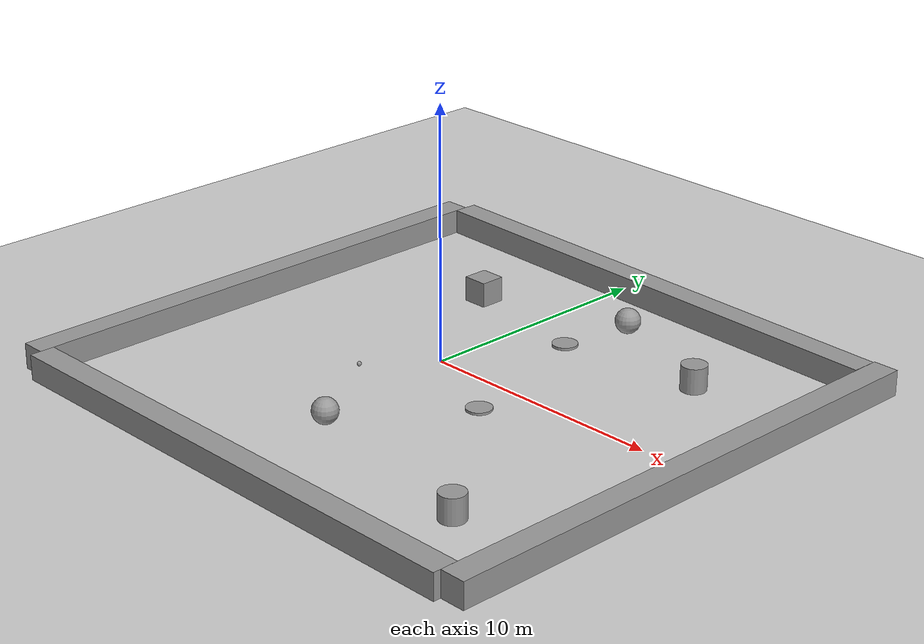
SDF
<sdf version="1.7">
 <world name="default">
  <light name="sun" type="directional">
   <pose>0 0 10 0 -0 0</pose>
   <diffuse>0.8 0.8 0.8 1</diffuse>
   <specular>0.2 0.2 0.2 1</specular>
   <attenuation>
    <range>1000</range>
    <constant>0.9</constant>
    <linear>0.01</linear>
    <quadratic>0.001</quadratic>
   </attenuation>
   <direction>-0.5 0.1 -0.9</direction>
   <spot><inner_angle>0</inner_angle><outer_angle>0</outer_angle><falloff>0</falloff></spot>
  </light>
  <model name="ground_plane">
   <static>1</static>
   <link name="link">
    <collision name="collision">
     <geometry><plane><normal>0 0 1</normal><size>100 100</size></plane></geometry>
     <surface><friction><ode><mu>100</mu><mu2>50</mu2></ode></friction></surface>
    </collision>
    <visual name="visual">
     <cast_shadows>0</cast_shadows>
     <geometry><plane><normal>0 0 1</normal><size>100 100</size></plane></geometry>
     <material>
      <script><uri>file://media/materials/scripts/gazebo.material</uri><name>Gazebo/Grey</name></script>
     </material>
    </visual>
   </link>
  </model>
  <gravity>0 0 -9.8</gravity>
  <magnetic_field>6e-06 2.3e-05 -4.2e-05</magnetic_field>
  <atmosphere type="adiabatic"/>
  <physics type="ode">
   <max_step_size>0.001</max_step_size>
   <real_time_factor>1</real_time_factor>
   <real_time_update_rate>1000</real_time_update_rate>
  </physics>
  <scene><ambient>0.4 0.4 0.4 1</ambient><background>0.7 0.7 0.7 1</background><shadows>1</shadows></scene>
  <spherical_coordinates>
   <surface_model>EARTH_WGS84</surface_model>
   <latitude_deg>0</latitude_deg>
   <longitude_deg>0</longitude_deg>
   <elevation>0</elevation>
   <heading_deg>0</heading_deg>
  </spherical_coordinates>
  <model name="Untitled">
   <link name="link_0">
    <inertial>
     <mass>320.79</mass>
     <inertia><ixx>12253.1</ixx><ixy>0</ixy><ixz>0</ixz><iyy>53.465</iyy><iyz>0</iyz><izz>12253.1</izz></inertia>
    </inertial>
    <visual name="visual">
     <geometry><box><size>1 21.386 1</size></box></geometry>
     <material>
      <lighting>1</lighting>
      <script><uri>file://media/materials/scripts/gazebo.material</uri><name>Gazebo/Grey</name></script>
      <shader type="pixel"><normal_map>__default__</normal_map></shader>
      <ambient>0.3 0.3 0.3 1</ambient>
      <diffuse>0.7 0.7 0.7 1</diffuse>
      <specular>0.01 0.01 0.01 1</specular>
      <emissive>0 0 0 1</emissive>
     </material>
    </visual>
    <collision name="collision">
     <geometry><box><size>1 21.386 1</size></box></geometry>
     <surface>
      <friction>
       <ode><mu>1</mu><mu2>1</mu2><fdir1>0 0 0</fdir1><slip1>0</slip1><slip2>0</slip2></ode>
       <torsional>
        <coefficient>1</coefficient>
        <patch_radius>0</patch_radius>
        <surface_radius>0</surface_radius>
        <use_patch_radius>1</use_patch_radius>
        <ode><slip>0</slip></ode>
       </torsional>
      </friction>
      <bounce><restitution_coefficient>0</restitution_coefficient><threshold>1e+06</threshold></bounce>
      <contact>
       <collide_without_contact>0</collide_without_contact>
       <collide_without_contact_bitmask>1</collide_without_contact_bitmask>
       <collide_bitmask>1</collide_bitmask>
       <ode>
        <soft_cfm>0</soft_cfm>
        <soft_erp>0.2</soft_erp>
        <kp>1e+13</kp>
        <kd>1</kd>
        <max_vel>0.01</max_vel>
        <min_depth>0</min_depth>
       </ode>
       <bullet>
        <split_impulse>1</split_impulse>
        <split_impulse_penetration_threshold>-0.01</split_impulse_penetration_threshold>
        <soft_cfm>0</soft_cfm>
        <soft_erp>0.2</soft_erp>
        <kp>1e+13</kp>
        <kd>1</kd>
       </bullet>
      </contact>
     </surface>
    </collision>
   </link>
   <static>0</static>
   <pose>-9.55295 -0.769559 0.5 0 -0 -0.000468</pose>
  </model>
  <model name="Untitled_clone">
   <link name="link_0">
    <inertial>
     <mass>320.79</mass>
     <inertia><ixx>12253.1</ixx><ixy>0</ixy><ixz>0</ixz><iyy>53.465</iyy><iyz>0</iyz><izz>12253.1</izz></inertia>
    </inertial>
    <visual name="visual">
     <geometry><box><size>1 21.386 1</size></box></geometry>
     <material>
      <lighting>1</lighting>
      <script><uri>file://media/materials/scripts/gazebo.material</uri><name>Gazebo/Grey</name></script>
      <shader type="pixel"><normal_map>__default__</normal_map></shader>
      <ambient>0.3 0.3 0.3 1</ambient>
      <diffuse>0.7 0.7 0.7 1</diffuse>
      <specular>0.01 0.01 0.01 1</specular>
      <emissive>0 0 0 1</emissive>
     </material>
    </visual>
    <collision name="collision">
     <geometry><box><size>1 21.386 1</size></box></geometry>
     <surface>
      <friction>
       <ode><mu>1</mu><mu2>1</mu2><fdir1>0 0 0</fdir1><slip1>0</slip1><slip2>0</slip2></ode>
       <torsional>
        <coefficient>1</coefficient>
        <patch_radius>0</patch_radius>
        <surface_radius>0</surface_radius>
        <use_patch_radius>1</use_patch_radius>
        <ode><slip>0</slip></ode>
       </torsional>
      </friction>
      <bounce><restitution_coefficient>0</restitution_coefficient><threshold>1e+06</threshold></bounce>
      <contact>
       <collide_without_contact>0</collide_without_contact>
       <collide_without_contact_bitmask>1</collide_without_contact_bitmask>
       <collide_bitmask>1</collide_bitmask>
       <ode>
        <soft_cfm>0</soft_cfm>
        <soft_erp>0.2</soft_erp>
        <kp>1e+13</kp>
        <kd>1</kd>
        <max_vel>0.01</max_vel>
        <min_depth>0</min_depth>
       </ode>
       <bullet>
        <split_impulse>1</split_impulse>
        <split_impulse_penetration_threshold>-0.01</split_impulse_penetration_threshold>
        <soft_cfm>0</soft_cfm>
        <soft_erp>0.2</soft_erp>
        <kp>1e+13</kp>
        <kd>1</kd>
       </bullet>
      </contact>
     </surface>
    </collision>
   </link>
   <static>0</static>
   <pose>1.65539 9.56207 0.5 0 -0 1.53972</pose>
  </model>
  <model name="Untitled_clone_0">
   <link name="link_0">
    <inertial>
     <mass>320.79</mass>
     <inertia><ixx>12253.1</ixx><ixy>0</ixy><ixz>0</ixz><iyy>53.465</iyy><iyz>0</iyz><izz>12253.1</izz></inertia>
    </inertial>
    <visual name="visual">
     <geometry><box><size>1 21.386 1</size></box></geometry>
     <material>
      <lighting>1</lighting>
      <script><uri>file://media/materials/scripts/gazebo.material</uri><name>Gazebo/Grey</name></script>
      <shader type="pixel"><normal_map>__default__</normal_map></shader>
      <ambient>0.3 0.3 0.3 1</ambient>
      <diffuse>0.7 0.7 0.7 1</diffuse>
      <specular>0.01 0.01 0.01 1</specular>
      <emissive>0 0 0 1</emissive>
     </material>
    </visual>
    <collision name="collision">
     <geometry><box><size>1 21.386 1</size></box></geometry>
     <surface>
      <friction>
       <ode><mu>1</mu><mu2>1</mu2><fdir1>0 0 0</fdir1><slip1>0</slip1><slip2>0</slip2></ode>
       <torsional>
        <coefficient>1</coefficient>
        <patch_radius>0</patch_radius>
        <surface_radius>0</surface_radius>
        <use_patch_radius>1</use_patch_radius>
        <ode><slip>0</slip></ode>
       </torsional>
      </friction>
      <bounce><restitution_coefficient>0</restitution_coefficient><threshold>1e+06</threshold></bounce>
      <contact>
       <collide_without_contact>0</collide_without_contact>
       <collide_without_contact_bitmask>1</collide_without_contact_bitmask>
       <collide_bitmask>1</collide_bitmask>
       <ode>
        <soft_cfm>0</soft_cfm>
        <soft_erp>0.2</soft_erp>
        <kp>1e+13</kp>
        <kd>1</kd>
        <max_vel>0.01</max_vel>
        <min_depth>0</min_depth>
       </ode>
       <bullet>
        <split_impulse>1</split_impulse>
        <split_impulse_penetration_threshold>-0.01</split_impulse_penetration_threshold>
        <soft_cfm>0</soft_cfm>
        <soft_erp>0.2</soft_erp>
        <kp>1e+13</kp>
        <kd>1</kd>
       </bullet>
      </contact>
     </surface>
    </collision>
   </link>
   <static>0</static>
   <pose>12.8442 -0.893901 0.5 0 -0 -0.001403</pose>
  </model>
  <model name="Untitled_clone_1">
   <link name="link_0">
    <inertial>
     <mass>320.79</mass>
     <inertia><ixx>12253.1</ixx><ixy>0</ixy><ixz>0</ixz><iyy>53.465</iyy><iyz>0</iyz><izz>12253.1</izz></inertia>
    </inertial>
    <visual name="visual">
     <geometry><box><size>1 21.386 1</size></box></geometry>
     <material>
      <lighting>1</lighting>
      <script><uri>file://media/materials/scripts/gazebo.material</uri><name>Gazebo/Grey</name></script>
      <shader type="pixel"><normal_map>__default__</normal_map></shader>
      <ambient>0.3 0.3 0.3 1</ambient>
      <diffuse>0.7 0.7 0.7 1</diffuse>
      <specular>0.01 0.01 0.01 1</specular>
      <emissive>0 0 0 1</emissive>
     </material>
    </visual>
    <collision name="collision">
     <geometry><box><size>1 21.386 1</size></box></geometry>
     <surface>
      <friction>
       <ode><mu>1</mu><mu2>1</mu2><fdir1>0 0 0</fdir1><slip1>0</slip1><slip2>0</slip2></ode>
       <torsional>
        <coefficient>1</coefficient>
        <patch_radius>0</patch_radius>
        <surface_radius>0</surface_radius>
        <use_patch_radius>1</use_patch_radius>
        <ode><slip>0</slip></ode>
       </torsional>
      </friction>
      <bounce><restitution_coefficient>0</restitution_coefficient><threshold>1e+06</threshold></bounce>
      <contact>
       <collide_without_contact>0</collide_without_contact>
       <collide_without_contact_bitmask>1</collide_without_contact_bitmask>
       <collide_bitmask>1</collide_bitmask>
       <ode>
        <soft_cfm>0</soft_cfm>
        <soft_erp>0.2</soft_erp>
        <kp>1e+13</kp>
        <kd>1</kd>
        <max_vel>0.01</max_vel>
        <min_depth>0</min_depth>
       </ode>
       <bullet>
        <split_impulse>1</split_impulse>
        <split_impulse_penetration_threshold>-0.01</split_impulse_penetration_threshold>
        <soft_cfm>0</soft_cfm>
        <soft_erp>0.2</soft_erp>
        <kp>1e+13</kp>
        <kd>1</kd>
       </bullet>
      </contact>
     </surface>
    </collision>
   </link>
   <static>0</static>
   <pose>1.63589 -11.387 0.5 0 -0 1.57154</pose>
  </model>
  <model name="unit_sphere">
   <pose>3.01935 6.92322 0.5 0 -0 0</pose>
   <link name="link">
    <inertial>
     <mass>1</mass>
     <inertia><ixx>0.1</ixx><ixy>0</ixy><ixz>0</ixz><iyy>0.1</iyy><iyz>0</iyz><izz>0.1</izz></inertia>
    </inertial>
    <collision name="collision"><geometry><sphere><radius>0.5</radius></sphere></geometry></collision>
    <visual name="visual">
     <geometry><sphere><radius>0.5</radius></sphere></geometry>
     <material>
      <script><name>Gazebo/Grey</name><uri>file://media/materials/scripts/gazebo.material</uri></script>
     </material>
    </visual>
   </link>
  </model>
  <model name="unit_cylinder">
   <pose>9.02895 -7.9673 0.499998 3e-06 -3e-06 0</pose>
   <link name="link">
    <inertial>
     <mass>1</mass>
     <inertia><ixx>0.145833</ixx><ixy>0</ixy><ixz>0</ixz><iyy>0.145833</iyy><iyz>0</iyz><izz>0.125</izz></inertia>
    </inertial>
    <collision name="collision">
     <geometry><cylinder><radius>0.5</radius><length>1</length></cylinder></geometry>
    </collision>
    <visual name="visual">
     <geometry><cylinder><radius>0.5</radius><length>1</length></cylinder></geometry>
     <material>
      <script><name>Gazebo/Grey</name><uri>file://media/materials/scripts/gazebo.material</uri></script>
     </material>
    </visual>
   </link>
  </model>
  <model name="unit_box">
   <pose>-3.00573 5.13973 0.499995 0 -1e-05 0</pose>
   <link name="link">
    <inertial>
     <mass>1</mass>
     <inertia>
      <ixx>0.166667</ixx>
      <ixy>0</ixy>
      <ixz>0</ixz>
      <iyy>0.166667</iyy>
      <iyz>0</iyz>
      <izz>0.166667</izz>
     </inertia>
    </inertial>
    <collision name="collision"><geometry><box><size>1 1 1</size></box></geometry></collision>
    <visual name="visual">
     <geometry><box><size>1 1 1</size></box></geometry>
     <material>
      <script><name>Gazebo/Grey</name><uri>file://media/materials/scripts/gazebo.material</uri></script>
     </material>
    </visual>
   </link>
  </model>
  <model name="unit_sphere_0">
   <pose>-1.77099 -2.47501 0.089456 0 -0 0</pose>
   <link name="link">
    <inertial>
     <mass>1</mass>
     <inertia><ixx>0.1</ixx><ixy>0</ixy><ixz>0</ixz><iyy>0.1</iyy><iyz>0</iyz><izz>0.1</izz></inertia>
    </inertial>
    <collision name="collision"><geometry><sphere><radius>0.089456</radius></sphere></geometry></collision>
    <visual name="visual">
     <geometry><sphere><radius>0.089456</radius></sphere></geometry>
     <material>
      <script><name>Gazebo/Grey</name><uri>file://media/materials/scripts/gazebo.material</uri></script>
     </material>
    </visual>
   </link>
  </model>
  <model name="unit_cylinder_0">
   <pose>8.01882 4.9509 0.499998 3e-06 -3e-06 0</pose>
   <link name="link">
    <inertial>
     <mass>1</mass>
     <inertia><ixx>0.145833</ixx><ixy>0</ixy><ixz>0</ixz><iyy>0.145833</iyy><iyz>0</iyz><izz>0.125</izz></inertia>
    </inertial>
    <collision name="collision">
     <geometry><cylinder><radius>0.5</radius><length>1</length></cylinder></geometry>
    </collision>
    <visual name="visual">
     <geometry><cylinder><radius>0.5</radius><length>1</length></cylinder></geometry>
     <material>
      <script><name>Gazebo/Grey</name><uri>file://media/materials/scripts/gazebo.material</uri></script>
     </material>
    </visual>
   </link>
  </model>
  <model name="unit_cylinder_1">
   <pose>3.88967 -1.802 0.047852 0 -0 0</pose>
   <link name="link">
    <inertial>
     <mass>1</mass>
     <inertia><ixx>0.145833</ixx><ixy>0</ixy><ixz>0</ixz><iyy>0.145833</iyy><iyz>0</iyz><izz>0.125</izz></inertia>
    </inertial>
    <collision name="collision">
     <geometry><cylinder><radius>0.5</radius><length>0.095705</length></cylinder></geometry>
    </collision>
    <visual name="visual">
     <geometry><cylinder><radius>0.5</radius><length>0.095705</length></cylinder></geometry>
     <material>
      <script><name>Gazebo/Grey</name><uri>file://media/materials/scripts/gazebo.material</uri></script>
     </material>
    </visual>
   </link>
  </model>
  <light name="user_directional_light_1" type="directional">
   <pose>10.7191 12.3084 1 0 -0 0</pose>
   <diffuse>0.5 0.5 0.5 1</diffuse>
   <specular>0.1 0.1 0.1 1</specular>
   <direction>0.1 0.1 -0.9</direction>
   <attenuation>
    <range>20</range>
    <constant>0.5</constant>
    <linear>0.01</linear>
    <quadratic>0.001</quadratic>
   </attenuation>
   <spot><inner_angle>0</inner_angle><outer_angle>0</outer_angle><falloff>0</falloff></spot>
  </light>
  <light name="user_directional_light_2" type="directional">
   <pose>7.14655 -12.1251 1 0 -0 0</pose>
   <diffuse>0.5 0.5 0.5 1</diffuse>
   <specular>0.1 0.1 0.1 1</specular>
   <direction>0.1 0.1 -0.9</direction>
   <attenuation>
    <range>20</range>
    <constant>0.5</constant>
    <linear>0.01</linear>
    <quadratic>0.001</quadratic>
   </attenuation>
   <spot><inner_angle>0</inner_angle><outer_angle>0</outer_angle><falloff>0</falloff></spot>
  </light>
  <light name="user_directional_light_3" type="directional">
   <pose>17.3852 -0.03382 1 0 -0 0</pose>
   <diffuse>0.5 0.5 0.5 1</diffuse>
   <specular>0.1 0.1 0.1 1</specular>
   <direction>0.1 0.1 -0.9</direction>
   <attenuation>
    <range>20</range>
    <constant>0.5</constant>
    <linear>0.01</linear>
    <quadratic>0.001</quadratic>
   </attenuation>
   <spot><inner_angle>0</inner_angle><outer_angle>0</outer_angle><falloff>0</falloff></spot>
  </light>
  <light name="user_directional_light_0" type="directional">
   <pose>-6.67699 0.114681 1 0 -0 0</pose>
   <diffuse>0.5 0.5 0.5 1</diffuse>
   <specular>0.1 0.1 0.1 1</specular>
   <direction>0.1 0.1 -0.9</direction>
   <attenuation>
    <range>20</range>
    <constant>0.5</constant>
    <linear>0.01</linear>
    <quadratic>0.001</quadratic>
   </attenuation>
   <spot><inner_angle>0</inner_angle><outer_angle>0</outer_angle><falloff>0</falloff></spot>
  </light>
  <model name="unit_sphere_1">
   <pose>0.997185 -6.46441 0.5 0 -0 0</pose>
   <link name="link">
    <inertial>
     <mass>1</mass>
     <inertia><ixx>0.1</ixx><ixy>0</ixy><ixz>0</ixz><iyy>0.1</iyy><iyz>0</iyz><izz>0.1</izz></inertia>
    </inertial>
    <collision name="collision"><geometry><sphere><radius>0.5</radius></sphere></geometry></collision>
    <visual name="visual">
     <geometry><sphere><radius>0.5</radius></sphere></geometry>
     <material>
      <script><name>Gazebo/Grey</name><uri>file://media/materials/scripts/gazebo.material</uri></script>
     </material>
    </visual>
   </link>
  </model>
  <model name="unit_cylinder_2">
   <pose>2.17801 4.35457 0.051602 0 -0 0</pose>
   <link name="link">
    <inertial>
     <mass>1</mass>
     <inertia><ixx>0.145833</ixx><ixy>0</ixy><ixz>0</ixz><iyy>0.145833</iyy><iyz>0</iyz><izz>0.125</izz></inertia>
    </inertial>
    <collision name="collision">
     <geometry><cylinder><radius>0.5</radius><length>0.103206</length></cylinder></geometry>
    </collision>
    <visual name="visual">
     <geometry><cylinder><radius>0.5</radius><length>0.103206</length></cylinder></geometry>
     <material>
      <script><name>Gazebo/Grey</name><uri>file://media/materials/scripts/gazebo.material</uri></script>
     </material>
    </visual>
   </link>
  </model>
 </world>
</sdf>
